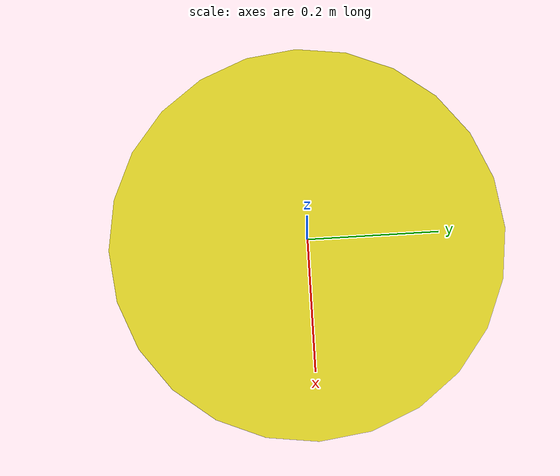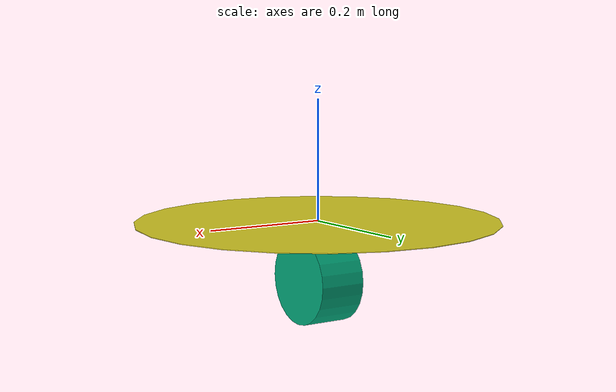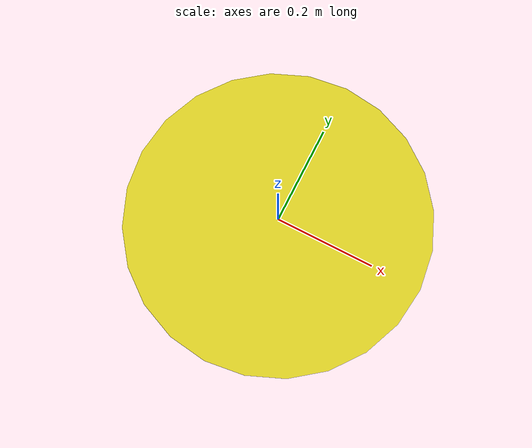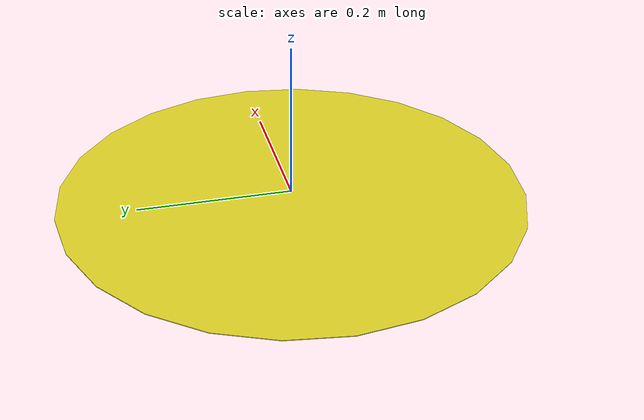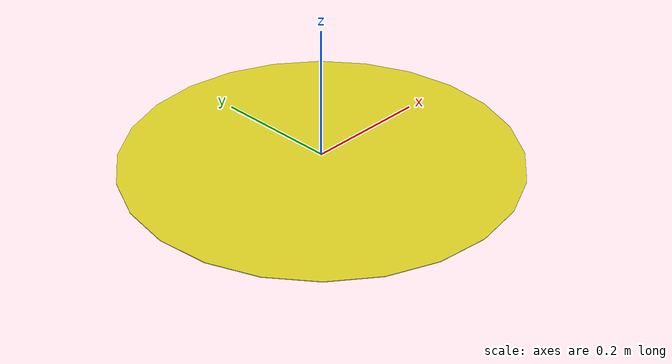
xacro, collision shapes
<?xml version="1.0"?>

<robot name="quadrotor" xmlns:xacro="http://www.ros.org/wiki/xacro">

    <!-- Included URDF Files -->
    <xacro:include filename="$(find drone_description)/urdf/drone.xacro" />

    <!-- Instantiate quadrotor_base_macro once (has no parameters atm) -->
    <xacro:drone />

    <gazebo>
      <plugin name="quadrotor_aerodynamics" filename="libhector_gazebo_quadrotor_aerodynamics.so">
        <alwaysOn>true</alwaysOn>
        <updateRate>0.0</updateRate>
        <bodyName>base_link</bodyName>
        <frameId>$(arg base_link_frame)</frameId>
      </plugin>
    </gazebo>

    <gazebo>
      <plugin name="quadrotor_propulsion" filename="libhector_gazebo_quadrotor_propulsion.so">
        <alwaysOn>true</alwaysOn>
        <updateRate>0.0</updateRate>
        <bodyName>base_link</bodyName>
        <frameId>$(arg base_link_frame)</frameId>
        <controlRate>100.0</controlRate>
        <controlTolerance>0.01</controlTolerance>
        <controlDelay>0.01</controlDelay>
        <motorStatusRate>0.0</motorStatusRate>
        <triggerTopic></triggerTopic>
        <topicName></topicName>
        <pwmTopicName></pwmTopicName>
        <supplyTopic></supplyTopic>
        <wrenchTopic></wrenchTopic>
        <statusTopic></statusTopic>
      </plugin>
    </gazebo>

        <gazebo>
          <plugin name="quadrotor_imu_sim" filename="libhector_gazebo_ros_imu.so">
            <updateRate>100.0</updateRate>
            <bodyName>base_link</bodyName>
            <frameId>$(arg base_link_frame)</frameId>
            <topicName>raw_imu</topicName>
            <rpyOffset>0 0 0</rpyOffset> <!-- deprecated -->
            <gaussianNoise>0</gaussianNoise>  <!-- deprecated -->
            <accelDrift>0.1 0.1 0.1</accelDrift>
            <accelGaussianNoise>0.35 0.35 0.3</accelGaussianNoise>
            <rateDrift>0.1 0.1 0.1</rateDrift>
            <rateGaussianNoise>0.05 0.05 0.015</rateGaussianNoise>
          </plugin>

          <plugin name="quadrotor_baro_sim" filename="libhector_gazebo_ros_baro.so">
            <updateRate>10.0</updateRate>
            <bodyName>base_link</bodyName>
            <frameId>$(arg base_link_frame)</frameId>
            <topicName>pressure_height</topicName>
            <altimeterTopicName>altimeter</altimeterTopicName>
            <offset>0</offset>
            <drift>10.0</drift>
            <gaussianNoise>0.1</gaussianNoise>
          </plugin>

          <plugin name="quadrotor_magnetic_sim" filename="libhector_gazebo_ros_magnetic.so">
            <updateRate>10.0</updateRate>
            <bodyName>base_link</bodyName>
            <frameId>$(arg base_link_frame)</frameId>
            <topicName>magnetic</topicName>
            <offset>0 0 0</offset>
            <drift>0.0 0.0 0.0</drift>
            <gaussianNoise>1.3e-2 1.3e-2 1.3e-2</gaussianNoise>
          </plugin>

          <plugin name="quadrotor_gps_sim" filename="libhector_gazebo_ros_gps.so">
            <updateRate>4.0</updateRate>
            <bodyName>base_link</bodyName>
            <frameId>$(arg base_link_frame)</frameId>
            <topicName>fix</topicName>
            <velocityTopicName>fix_velocity</velocityTopicName>
            <referenceLatitude>49.860246</referenceLatitude>
            <referenceLongitude>8.687077</referenceLongitude>
            <drift>5.0 5.0 5.0</drift>
            <gaussianNoise>0.01 0.01 0.01</gaussianNoise>
            <velocityDrift>0 0 0</velocityDrift>
            <velocityGaussianNoise>0.05 0.05 0.05</velocityGaussianNoise>
          </plugin>

          <plugin name="quadrotor_groundtruth_sim" filename="libgazebo_ros_p3d.so">
            <updateRate>100.0</updateRate>
            <bodyName>base_link</bodyName>
            <topicName>ground_truth/state</topicName>
            <gaussianNoise>0.0</gaussianNoise>
            <frameName>$(arg world_frame)</frameName>
          </plugin>

        </gazebo>

    <gazebo>
      <plugin name="quadrotor_controller" filename="libgazebo_ros_control.so">
        <controlPeriod>0.01</controlPeriod>
        <robotSimType>hector_quadrotor_controller_gazebo/QuadrotorHardwareSim</robotSimType>
      </plugin>
    </gazebo>

    <!-- Sonar height sensor -->
  <xacro:include filename="$(find hector_sensors_description)/urdf/sonar_sensor.urdf.xacro" />
    <xacro:sonar_sensor name="sonar" parent="base_link" ros_topic="sonar_height" update_rate="10" min_range="0.03" max_range="3.0" field_of_view="${40*pi/180}" ray_count="3">
      <origin xyz="-0.16 0.0 -0.012" rpy="0 ${90*pi/180} 0"/>
    </xacro:sonar_sensor>

    <!-- Hokuyo UTM-30LX mounted upside down below the quadrotor body -->
    <xacro:include filename="$(find hector_sensors_description)/urdf/hokuyo_utm30lx.urdf.xacro" />
    <xacro:hokuyo_utm30lx name="laser0" parent="base_link" ros_topic="scan" update_rate="40" ray_count="1081" min_angle="-135" max_angle="135">
      <origin xyz="0.0 0.0 -0.097" rpy="${M_PI} 0 0"/>
    </xacro:hokuyo_utm30lx>

</robot>

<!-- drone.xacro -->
<robot xmlns:xacro="http://www.ros.org/wiki/xacro">

  <!-- Main quadrotor link -->
  <xacro:macro name="drone">
    <link name="base_link">
      <inertial>
        <mass value="1.477" />
        <origin xyz="0 0 0" />
        <inertia ixx="0.01152" ixy="0.0" ixz="0.0" iyy="0.01152" iyz="0.0" izz="0.0218" />
      </inertial>

      <visual>
        <origin xyz="0 0 0" rpy="0 0 0" />
        <geometry>
          <mesh filename="package://drone_description/meshes/drone.stl"/>
        </geometry>
      </visual>

      <collision>
        <origin xyz="0 0 0" rpy="0 0 0" />
        <geometry>
          <cylinder length="0.001" radius="0.301958"/>
        </geometry>
      </collision>
    </link>

  <gazebo reference="base_link">
 <material>Gazebo/Yellow</material>
</gazebo>

  </xacro:macro>
</robot>

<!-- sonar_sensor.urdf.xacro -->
<robot xmlns:xacro="http://www.ros.org/wiki/xacro">
  <xacro:macro name="sonar_sensor" params="name parent *origin ros_topic update_rate min_range max_range field_of_view ray_count">
    <joint name="${name}_joint" type="fixed">
      <xacro:insert_block name="origin" />
      <parent link="${parent}"/>
      <child link="${name}_link"/>
    </joint>

    <link name="${name}_link">
      <inertial>
        <mass value="0.001" />
        <origin xyz="0 0 0" rpy="0 0 0" />
        <inertia ixx="0.000000017" ixy="0" ixz="0" iyy="0.000000017" iyz="0" izz="0.000000017" />
      </inertial>
      <visual>
        <origin xyz="0 0 0" rpy="0 0 0" />
        <geometry>
          <mesh filename="package://hector_sensors_description/meshes/sonar_sensor/max_sonar_ez4.dae"/>
        </geometry>
      </visual>
      <collision>
        <origin xyz="0 0 0" rpy="0 0 0" />
        <geometry>
          <box size="0.01 0.01 0.01" />
        </geometry>
      </collision>
    </link>

    <gazebo reference="${name}_link">
      <sensor type="ray" name="${name}">
        <always_on>true</always_on>
        <update_rate>${update_rate}</update_rate>
        <pose>0 0 0 0 0 0</pose>
        <visualize>false</visualize>
        <ray>
          <scan>
            <horizontal>
              <samples>${ray_count}</samples>
              <resolution>1</resolution>
              <min_angle>-${field_of_view/2}</min_angle>
              <max_angle> ${field_of_view/2}</max_angle>
            </horizontal>
            <vertical>
              <samples>${ray_count}</samples>
              <resolution>1</resolution>
              <min_angle>-${field_of_view/2}</min_angle>
              <max_angle> ${field_of_view/2}</max_angle>
            </vertical>
          </scan>
          <range>
            <min>${min_range}</min>
            <max>${max_range}</max>
            <resolution>0.01</resolution>
          </range>
        </ray>

        <plugin name="gazebo_ros_${name}_controller" filename="libhector_gazebo_ros_sonar.so">
          <gaussianNoise>0.005</gaussianNoise>
          <topicName>${ros_topic}</topicName>
          <frameId>${name}_link</frameId>
        </plugin>
      </sensor>
    </gazebo>
  </xacro:macro>
</robot>

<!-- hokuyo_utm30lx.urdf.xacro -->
<robot xmlns:xacro="http://ros.org/wiki/xacro">
    <xacro:property name="M_PI" value="3.1415926535897931" />

    <xacro:macro name="hokuyo_utm30lx_model" params="name parent *origin">
      <joint name="${name}_joint" type="fixed">
        <xacro:insert_block name="origin" />
        <parent link="${parent}"/>
        <child link="${name}_frame"/>
      </joint>

      <link name="${name}_frame">
        <inertial>
          <mass value="0.270" />
          <origin xyz="0 0 0" rpy="0 0 0" />
          <inertia ixx="2.632e-4" ixy="0" ixz="0" iyy="2.632e-4" iyz="0" izz="1.62e-4" />
        </inertial>
        <visual>
          <origin xyz="0 0 0" rpy="0 0 0" />
          <geometry>
          <mesh filename="package://hector_sensors_description/meshes/hokuyo_utm30lx/hokuyo_utm_30lx$(optenv TEST_SELF_FILTER).dae"/>
        </geometry>
        </visual>
        <collision>
          <origin xyz="0.00 0 0.0" rpy="0 ${0.5 * M_PI} 0" />
          <geometry>
	    <cylinder length="0.079" radius="0.0735"/>
        </geometry>
        </collision>
      </link>
    </xacro:macro>

    <xacro:macro name="hokuyo_utm30lx" params="name parent *origin ros_topic update_rate ray_count min_angle max_angle">
      <xacro:hokuyo_utm30lx_model name="${name}" parent="${parent}">
        <xacro:insert_block name="origin" />
      </xacro:hokuyo_utm30lx_model>

      <gazebo reference="${name}_frame">
        <sensor type="ray" name="${name}">
          <always_on>true</always_on>
          <update_rate>${update_rate}</update_rate>
          <pose>0 0 0 0 0 0</pose>
          <visualize>false</visualize>
          <ray>
            <scan>
              <horizontal>
                <samples>${ray_count}</samples>
                <resolution>1</resolution>
                <min_angle>${min_angle * M_PI/180}</min_angle>
                <max_angle>${max_angle * M_PI/180}</max_angle>
              </horizontal>
            </scan>
            <range>
              <min>0.2</min>
              <max>30.0</max>
              <resolution>0.01</resolution>
            </range>
            <noise>
              <type>gaussian</type>
              <mean>0.0</mean>
              <stddev>0.004</stddev>
            </noise>
          </ray>
          <plugin name="gazebo_ros_${name}_controller" filename="libgazebo_ros_laser.so">
            <gaussianNoise>0.005</gaussianNoise>
            <hokuyoMinIntensity>2000</hokuyoMinIntensity>
            <alwaysOn>true</alwaysOn>
	    <robotNamespace>$(arg robot_name)/sensor/</robotNamespace>
            <updateRate>${update_rate}</updateRate>
            <topicName>${ros_topic}</topicName>
            <frameName>${name}_frame</frameName>
          </plugin>
        </sensor>
      </gazebo>
    </xacro:macro>

    <xacro:macro name="hokuyo_utm30lx_gpu" params="name parent *origin ros_topic update_rate ray_count min_angle max_angle">
      <xacro:hokuyo_utm30lx_model name="${name}" parent="${parent}">
        <xacro:insert_block name="origin" />
      </xacro:hokuyo_utm30lx_model>

      <gazebo reference="${name}_frame">
        <sensor type="gpu_ray" name="${name}">
          <update_rate>${update_rate}</update_rate>
          <pose>0 0 0 0 0 0</pose>
          <visualize>false</visualize>
          <ray>
            <scan>
              <horizontal>
                <samples>${ray_count}</samples>
                <resolution>1</resolution>
                <min_angle>${min_angle * M_PI/180}</min_angle>
                <max_angle>${max_angle * M_PI/180}</max_angle>
              </horizontal>
            </scan>
            <range>
              <min>0.2</min>
              <max>30.0</max>
              <resolution>0.01</resolution>
            </range>
            <noise>
              <type>gaussian</type>
              <mean>0.0</mean>
              <stddev>0.004</stddev>
            </noise>
          </ray>
          <plugin name="gazebo_ros_${name}_controller" filename="libgazebo_ros_gpu_laser.so">
            <topicName>${ros_topic}</topicName>
            <frameName>${name}_frame</frameName>
          </plugin>
        </sensor>
      </gazebo>
    </xacro:macro>
</robot>
